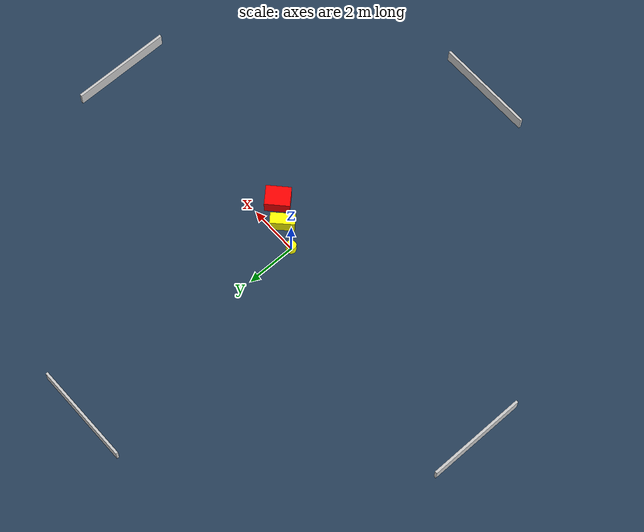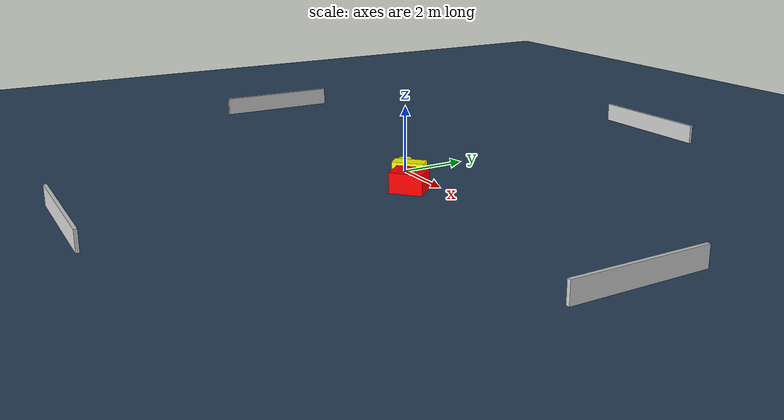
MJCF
<?xml version="1.0" ?>
<mujoco model="generated_environment">
  <option timestep="0.01" integrator="RK4" cone="elliptic"/>
  <default>
    <geom density="1"/>
  </default>
  <asset>
    <texture builtin="gradient" height="3072" name="skybox" rgb1="0.3 0.5 0.7" rgb2="0 0 0" type="skybox" width="512"/>
    <texture builtin="checker" height="300" name="groundplane" rgb1="0.2 0.3 0.4" rgb2="0.1 0.2 0.3" type="2d" width="300"/>
    <material name="groundplane" reflectance="0.2" texrepeat="5 5" texture="groundplane"/>
  </asset>
  <worldbody>
    <light dir="0 0 -1" directional="true" pos="0 0 1.5"/>
    <geom condim="3" friction="0.5 0.005 0.001" material="groundplane" name="floor" pos="0 0 0" size="0 0 0.05" type="plane"/>
    <body name="walls">
      <geom name="wall_1" condim="4" pos="-10.0 0.0 0.3" rgba="0.800000011920929 0.800000011920929 0.800000011920929 1.0" size="0.05 2.0 0.3" type="box"/>
      <geom name="wall_2" condim="4" pos="10.0 0.0 0.3" rgba="0.800000011920929 0.800000011920929 0.800000011920929 1.0" size="0.05 2.0 0.3" type="box"/>
      <geom name="wall_3" condim="4" pos="0.0 -10.0 0.3" rgba="0.800000011920929 0.800000011920929 0.800000011920929 1.0" size="2.0 0.05 0.3" type="box"/>
      <geom name="wall_4" condim="4" pos="0.0 10.0 0.3" rgba="0.800000011920929 0.800000011920929 0.800000011920929 1.0" size="2.0 0.05 0.3" type="box"/>
    </body>
    <body name="robot">
      <joint name="joint_x" type="slide" pos="0 0 0" axis="1 0 0"/>
      <joint name="joint_y" type="slide" pos="0 0 0" axis="0 1 0"/>
      <geom name="robot" type="cylinder" pos="0.0 0.0 0.2" size="0.2 0.2 0.0" mass="5.0" friction="1.0 0.005 0.0001" condim="4" rgba="1.0 1.0 0.0 1.0"/>
    </body>
    <body name="obstacle_1_movable">
      <geom name="obstacle_1_movable" condim="4" pos="0.9609512096169491 -0.41498886226795695 0.3" euler="0 0 44.45948345992767" friction="0.0 0.005 0.001" rgba="1.0 1.0 0.0 1.0" size="0.4789905281692512 0.22493993168285212 0.3" type="box" mass="0.1"/>
      <joint type="free"/>
    </body>
    <body name="obstacle_2_static">
      <geom name="obstacle_2_static" condim="4" pos="1.779734780003841 -0.9016771510918491 0.3" euler="0 0 223.18398674149137" friction="0.0 0.005 0.001" rgba="1.0 0.0 0.0 1.0" size="0.49115071380437486 0.39575400168818264 0.3" type="box"/>
    </body>
  </worldbody>
  <actuator>
    <motor name="actuator_x" joint="joint_x" gear="1" ctrlrange="-1 1"/>
    <motor name="actuator_y" joint="joint_y" gear="1" ctrlrange="-1 1"/>
  </actuator>
</mujoco>
